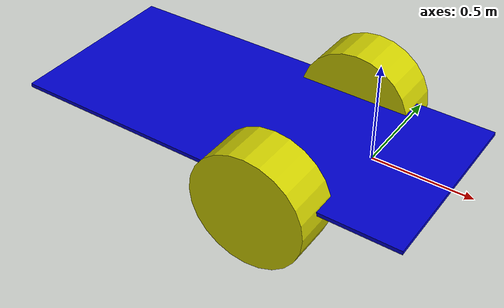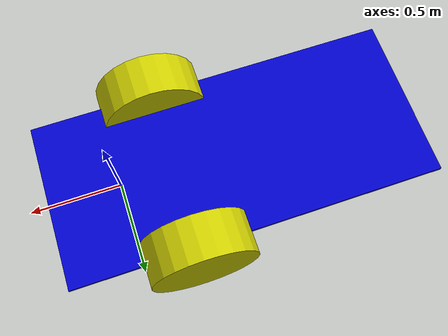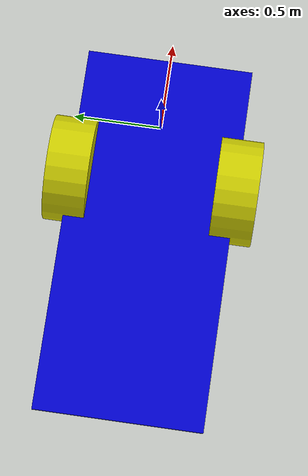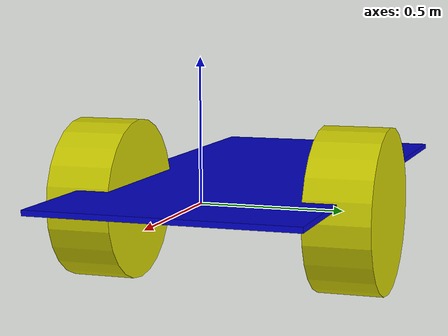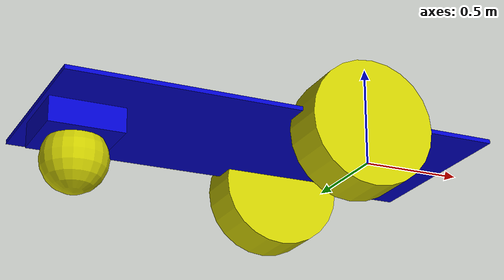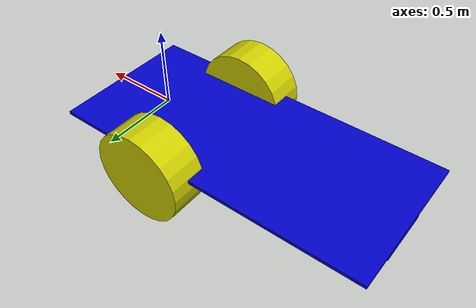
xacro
<?xml version="1.0"?>
<robot xmlns:xacro="http://www.ros.org/wiki/xacro" name="batmobil">

  <xacro:arg name="sim_mode" default="true" />
  <!-- Include core_model -->
  <xacro:include filename="core_model.xacro" />

  <!-- Include gz_config -->
  <xacro:include filename="ros2_control.xacro" />

  <!-- Include gz_config -->
  <!-- xacro:include filename="gz_config.xacro" /-->

  <!-- Call gazebo_plugins macro -->
  <!-- xacro:gazebo_plugins/-->

</robot>

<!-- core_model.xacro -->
<robot xmlns:xacro="http://www.ros.org/wiki/xacro" name="robot">

  <!-- Material Color -->
  <material name="blue">
    <color rgba="0 0 0.8 1"/>
  </material>

  <material name="yellow">
    <color rgba="0.8 0.8 0.0 1.0"/>
  </material>

  <material name="white">
    <color rgba="1 1 1 1"/>
  </material>

  <!-- Base Link -->
  <link name="base_link">
  </link>

<!-- BASE_FOOTPRINT LINK -->

  <joint name="base_footprint_joint" type="fixed">
    <parent link="base_link"/>
    <child link="base_footprint"/>
    <origin xyz="0 0 0" rpy="0 0 0"/>
  </joint>

  <link name="base_footprint">
  </link>

  <!-- Chassis link -->
  <link name="chassis">
    <visual>
      <origin xyz="0.35 0 0.01"/>
      <geometry>
        <box size="2.1 0.95 0.02"/>
      </geometry>
      <material name="blue"/>
    </visual>
    <collision>
      <origin xyz="0.35 0 0.01"/>
      <geometry>
        <box size="2.1 0.95 0.02"/>
      </geometry>
    </collision>
    <inertial>
      <origin xyz="0.35 0 0.01"/>
      <mass value="10.0"/>
      <inertia ixx="1.0" ixy="0.0" ixz="0.0" iyy="1.0" iyz="0.0" izz="1.0"/>
    </inertial>
  </link>

  <!-- Joint chassis -->
  <joint name="chassis_joint" type="fixed">
    <parent link="base_link"/>
    <child link="chassis"/>
    <origin xyz="-1 0 0"/>
  </joint>

  <!-- Right Wheel Link -->
  <link name="right_wheel">
    <visual>
      <geometry>
        <cylinder length="0.24" radius="0.3"/>
      </geometry>
      <material name="yellow"/>
    </visual>
    <collision>
      <geometry>
        <cylinder length="0.24" radius="0.3"/>
      </geometry>
    </collision>
    <inertial>
      <origin xyz="0 0 0"/>
      <mass value="1.0"/>
      <inertia ixx="0.02" ixy="0.0" ixz="0.0" iyy="0.02" iyz="0.0" izz="0.02"/>
    </inertial>
  </link>

  <!-- Joint between base_link and right wheel -->
  <joint name="base_to_right_wheel" type="continuous">
    <parent link="base_link"/>
    <child link="right_wheel"/>
    <origin xyz="-0.3 -0.475 -0.05" rpy="-1.5708 0 0"/>
    <axis xyz="0 0 -1"/>
    <dynamics damping="0.1" friction="0.1"/>
  </joint>

  <!-- Left Wheel Link -->
  <link name="left_wheel">
    <visual>
      <geometry>
        <cylinder length="0.24" radius="0.3"/>
      </geometry>
      <material name="yellow"/>
    </visual>
    <collision>
      <geometry>
        <cylinder length="0.24" radius="0.3"/>
      </geometry>
    </collision>
    <inertial>
      <origin xyz="0 0 0"/>
      <mass value="1.0"/>
      <inertia ixx="0.02" ixy="0.0" ixz="0.0" iyy="0.02" iyz="0.0" izz="0.02"/>
    </inertial>
  </link>

  <!-- Joint between base_link and left wheel -->
  <joint name="base_to_left_wheel" type="continuous">
    <parent link="base_link"/>
    <child link="left_wheel"/>
    <origin xyz="-0.3 0.475 -0.05" rpy="1.5708 0 0"/>
    <axis xyz="0 0 1"/>
    <dynamics damping="0.1" friction="0.1"/>
  </joint>

  <!-- Caster Wheel Setup -->
  <joint name="base_caster_wheel_joint" type="fixed">
    <parent link="chassis"/>
    <child link="base_caster_wheel"/>
    <origin xyz="-0.5 0 -0.06" rpy="0 0 0"/>
  </joint>

  <link name="base_caster_wheel">
    <visual>
      <geometry>
        <box size="0.36 0.36 0.12" />
      </geometry>
      <material name="blue"/>
    </visual>
    <collision>
      <geometry>
        <box size="0.36 0.36 0.12" />
      </geometry>
    </collision>
    <inertial>
      <origin xyz="0 0 0"/>
      <mass value="1.0"/>
      <inertia ixx="0.02" ixy="0.0" ixz="0.0" iyy="0.02" iyz="0.0" izz="0.02"/>
    </inertial>
  </link>

  <joint name="caster_wheel_joint" type="fixed">
    <parent link="base_caster_wheel"/>
    <child link="caster_wheel"/>
    <origin xyz="0 0 -0.15" rpy="0 0 0"/>
  </joint>

  <link name="caster_wheel">
    <visual>
      <geometry>
        <sphere radius="0.16" />
      </geometry>
      <material name="yellow"/>
    </visual>
    <collision>
      <geometry>
        <sphere radius="0.16" />
      </geometry>
    </collision>
    <inertial>
      <origin xyz="0 0 0"/>
      <mass value="1.0"/>
      <inertia ixx="0.02" ixy="0.0" ixz="0.0" iyy="0.02" iyz="0.0" izz="0.02"/>
    </inertial>
  </link>

</robot>
